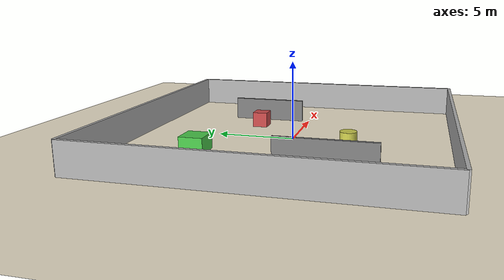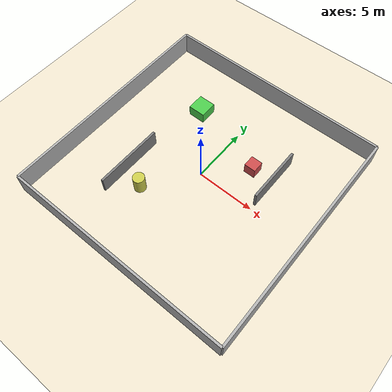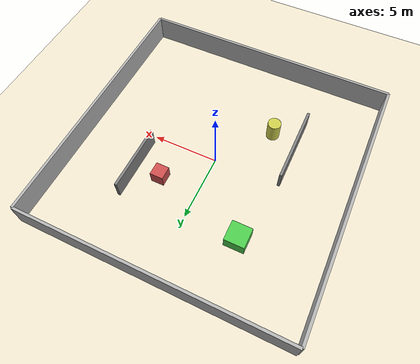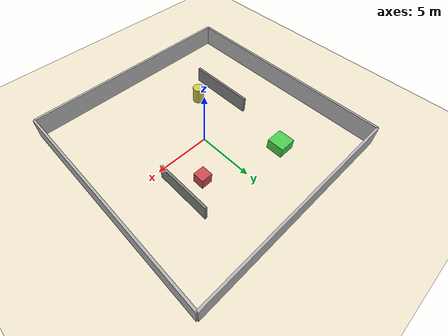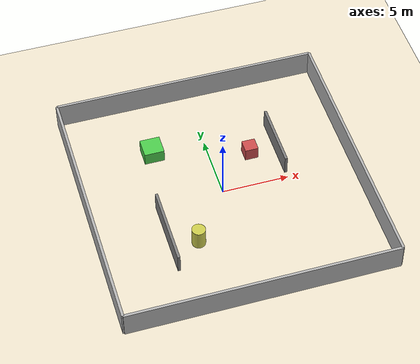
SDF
<?xml version="1.0"?>
<sdf version="1.7">
    <world name="empty">
        <!-- Optimized physics for better RTF and collision response -->
        <physics name="10ms" type="ode">
            <max_step_size>0.003</max_step_size>
            <real_time_factor>1</real_time_factor>
            <real_time_update_rate>333</real_time_update_rate>
            <ode>
                <solver>
                    <type>quick</type>
                    <iters>50</iters>
                    <sor>1.3</sor>
                </solver>
                <constraints>
                    <cfm>0.0</cfm>
                    <erp>0.2</erp>
                    <contact_max_correcting_vel>100.0</contact_max_correcting_vel>
                    <contact_surface_layer>0.001</contact_surface_layer>
                </constraints>
            </ode>
        </physics>

        <plugin name="ignition::gazebo::systems::Physics" filename="ignition-gazebo-physics-system"/>
        <plugin name="ignition::gazebo::systems::UserCommands" filename="ignition-gazebo-user-commands-system"/>
        <plugin name="ignition::gazebo::systems::SceneBroadcaster" filename="ignition-gazebo-scene-broadcaster-system"/>
        <plugin filename="libignition-gazebo-sensors-system.so" name="ignition::gazebo::systems::Sensors">
            <render_engine>ogre2</render_engine>
        </plugin>

        <scene>
            <ambient>1.0 1.0 1.0</ambient>
            <background>0.8 0.8 0.8</background>
        </scene>

        <light type="directional" name="sun">
            <cast_shadows>false</cast_shadows>
            <pose>0 0 10 0 0 0</pose>
            <diffuse>0.8 0.8 0.8 1</diffuse>
            <specular>0.2 0.2 0.2 1</specular>
            <direction>-0.5 0.1 -0.9</direction>
        </light>

        <!-- Ground Plane -->
        <model name="ground_plane">
            <pose>0 0 0 0 0 0</pose>
            <static>true</static>
            <link name="link">
                <collision name="collision">
                    <geometry>
                        <plane>
                            <normal>0 0 1</normal>
                            <size>100 100</size>
                        </plane>
                    </geometry>
                    <surface>
                        <friction>
                            <ode>
                                <mu>1.0</mu>
                                <mu2>1.0</mu2>
                            </ode>
                        </friction>
                        <contact>
                            <ode>
                                <kp>1000000.0</kp>
                                <kd>100.0</kd>
                                <max_vel>1.0</max_vel>
                                <min_depth>0.001</min_depth>
                            </ode>
                        </contact>
                    </surface>
                </collision>
                <visual name="visual">
                    <geometry>
                        <plane>
                            <normal>0 0 1</normal>
                            <size>100 100</size>
                        </plane>
                    </geometry>
                    <material>
                        <ambient>0.94 0.90 0.81 1</ambient>
                        <diffuse>0.94 0.90 0.81 1</diffuse>
                    </material>
                </visual>
            </link>
        </model>

        <!-- Boundary Walls - FIXED: Now at ground level -->
        <!-- North Boundary Wall -->
        <model name="wall_north">
            <pose>0 10 1 0 0 0</pose>
            <static>true</static>
            <link name="link">
                <collision name="collision">
                    <geometry>
                        <box>
                            <size>20 0.2 2</size>
                        </box>
                    </geometry>
                    <surface>
                        <friction>
                            <ode>
                                <mu>0.8</mu>
                                <mu2>0.8</mu2>
                            </ode>
                        </friction>
                        <contact>
                            <ode>
                                <kp>10000000.0</kp>
                                <kd>1000.0</kd>
                                <max_vel>0.0</max_vel>
                                <min_depth>0.0001</min_depth>
                            </ode>
                        </contact>
                        <bounce>
                            <restitution_coefficient>0.0</restitution_coefficient>
                        </bounce>
                    </surface>
                </collision>
                <visual name="visual">
                    <geometry>
                        <box>
                            <size>20 0.2 2</size>
                        </box>
                    </geometry>
                    <material>
                        <ambient>0.7 0.7 0.7 1</ambient>
                        <diffuse>0.7 0.7 0.7 1</diffuse>
                    </material>
                </visual>
            </link>
        </model>

        <!-- South Boundary Wall -->
        <model name="wall_south">
            <pose>0 -10 1 0 0 0</pose>
            <static>true</static>
            <link name="link">
                <collision name="collision">
                    <geometry>
                        <box>
                            <size>20 0.2 2</size>
                        </box>
                    </geometry>
                    <surface>
                        <friction>
                            <ode>
                                <mu>0.8</mu>
                                <mu2>0.8</mu2>
                            </ode>
                        </friction>
                        <contact>
                            <ode>
                                <kp>10000000.0</kp>
                                <kd>1000.0</kd>
                                <max_vel>0.0</max_vel>
                                <min_depth>0.0001</min_depth>
                            </ode>
                        </contact>
                        <bounce>
                            <restitution_coefficient>0.0</restitution_coefficient>
                        </bounce>
                    </surface>
                </collision>
                <visual name="visual">
                    <geometry>
                        <box>
                            <size>20 0.2 2</size>
                        </box>
                    </geometry>
                    <material>
                        <ambient>0.7 0.7 0.7 1</ambient>
                        <diffuse>0.7 0.7 0.7 1</diffuse>
                    </material>
                </visual>
            </link>
        </model>

        <!-- East Boundary Wall -->
        <model name="wall_east">
            <pose>10 0 1 0 0 0</pose>
            <static>true</static>
            <link name="link">
                <collision name="collision">
                    <geometry>
                        <box>
                            <size>0.2 20 2</size>
                        </box>
                    </geometry>
                    <surface>
                        <friction>
                            <ode>
                                <mu>0.8</mu>
                                <mu2>0.8</mu2>
                            </ode>
                        </friction>
                        <contact>
                            <ode>
                                <kp>10000000.0</kp>
                                <kd>1000.0</kd>
                                <max_vel>0.0</max_vel>
                                <min_depth>0.0001</min_depth>
                            </ode>
                        </contact>
                        <bounce>
                            <restitution_coefficient>0.0</restitution_coefficient>
                        </bounce>
                    </surface>
                </collision>
                <visual name="visual">
                    <geometry>
                        <box>
                            <size>0.2 20 2</size>
                        </box>
                    </geometry>
                    <material>
                        <ambient>0.7 0.7 0.7 1</ambient>
                        <diffuse>0.7 0.7 0.7 1</diffuse>
                    </material>
                </visual>
            </link>
        </model>

        <!-- West Boundary Wall -->
        <model name="wall_west">
            <pose>-10 0 1 0 0 0</pose>
            <static>true</static>
            <link name="link">
                <collision name="collision">
                    <geometry>
                        <box>
                            <size>0.2 20 2</size>
                        </box>
                    </geometry>
                    <surface>
                        <friction>
                            <ode>
                                <mu>0.8</mu>
                                <mu2>0.8</mu2>
                            </ode>
                        </friction>
                        <contact>
                            <ode>
                                <kp>10000000.0</kp>
                                <kd>1000.0</kd>
                                <max_vel>0.0</max_vel>
                                <min_depth>0.0001</min_depth>
                            </ode>
                        </contact>
                        <bounce>
                            <restitution_coefficient>0.0</restitution_coefficient>
                        </bounce>
                    </surface>
                </collision>
                <visual name="visual">
                    <geometry>
                        <box>
                            <size>0.2 20 2</size>
                        </box>
                    </geometry>
                    <material>
                        <ambient>0.7 0.7 0.7 1</ambient>
                        <diffuse>0.7 0.7 0.7 1</diffuse>
                    </material>
                </visual>
            </link>
        </model>

        <!-- Box Obstacle 1 -->
        <model name="box_1">
            <pose>3 3 0.5 0 0 0</pose>
            <static>true</static>
            <link name="link">
                <collision name="collision">
                    <geometry>
                        <box>
                            <size>1 1 1</size>
                        </box>
                    </geometry>
                    <surface>
                        <friction>
                            <ode>
                                <mu>0.8</mu>
                                <mu2>0.8</mu2>
                            </ode>
                        </friction>
                        <contact>
                            <ode>
                                <kp>10000000.0</kp>
                                <kd>1000.0</kd>
                                <max_vel>0.0</max_vel>
                                <min_depth>0.0001</min_depth>
                            </ode>
                        </contact>
                    </surface>
                </collision>
                <visual name="visual">
                    <geometry>
                        <box>
                            <size>1 1 1</size>
                        </box>
                    </geometry>
                    <material>
                        <ambient>0.8 0.3 0.3 1</ambient>
                        <diffuse>0.8 0.3 0.3 1</diffuse>
                    </material>
                </visual>
            </link>
        </model>

        <!-- Box Obstacle 2 -->
        <model name="box_2">
            <pose>-4 5 0.5 0 0 0</pose>
            <static>true</static>
            <link name="link">
                <collision name="collision">
                    <geometry>
                        <box>
                            <size>1.5 1.5 1</size>
                        </box>
                    </geometry>
                    <surface>
                        <friction>
                            <ode>
                                <mu>0.8</mu>
                                <mu2>0.8</mu2>
                            </ode>
                        </friction>
                        <contact>
                            <ode>
                                <kp>10000000.0</kp>
                                <kd>1000.0</kd>
                                <max_vel>0.0</max_vel>
                                <min_depth>0.0001</min_depth>
                            </ode>
                        </contact>
                    </surface>
                </collision>
                <visual name="visual">
                    <geometry>
                        <box>
                            <size>1.5 1.5 1</size>
                        </box>
                    </geometry>
                    <material>
                        <ambient>0.3 0.8 0.3 1</ambient>
                        <diffuse>0.3 0.8 0.3 1</diffuse>
                    </material>
                </visual>
            </link>
        </model>

        <!-- Cylinder Obstacle -->
        <model name="cylinder_1">
            <pose>-3 -4 0.75 0 0 0</pose>
            <static>true</static>
            <link name="link">
                <collision name="collision">
                    <geometry>
                        <cylinder>
                            <radius>0.5</radius>
                            <length>1.5</length>
                        </cylinder>
                    </geometry>
                    <surface>
                        <friction>
                            <ode>
                                <mu>0.8</mu>
                                <mu2>0.8</mu2>
                            </ode>
                        </friction>
                        <contact>
                            <ode>
                                <kp>10000000.0</kp>
                                <kd>1000.0</kd>
                                <max_vel>0.0</max_vel>
                                <min_depth>0.0001</min_depth>
                            </ode>
                        </contact>
                    </surface>
                </collision>
                <visual name="visual">
                    <geometry>
                        <cylinder>
                            <radius>0.5</radius>
                            <length>1.5</length>
                        </cylinder>
                    </geometry>
                    <material>
                        <ambient>0.8 0.8 0.3 1</ambient>
                        <diffuse>0.8 0.8 0.3 1</diffuse>
                    </material>
                </visual>
            </link>
        </model>

        <!-- Interior Wall 2 (moved away from spawn point) -->
        <model name="wall_2">
            <pose>-5 -3 0.75 0 0 1.57</pose>
            <static>true</static>
            <link name="link">
                <collision name="collision">
                    <geometry>
                        <box>
                            <size>6 0.2 1.5</size>
                        </box>
                    </geometry>
                    <surface>
                        <friction>
                            <ode>
                                <mu>0.8</mu>
                                <mu2>0.8</mu2>
                            </ode>
                        </friction>
                        <contact>
                            <ode>
                                <kp>10000000.0</kp>
                                <kd>1000.0</kd>
                                <max_vel>0.0</max_vel>
                                <min_depth>0.0001</min_depth>
                            </ode>
                        </contact>
                    </surface>
                </collision>
                <visual name="visual">
                    <geometry>
                        <box>
                            <size>6 0.2 1.5</size>
                        </box>
                    </geometry>
                    <material>
                        <ambient>0.5 0.5 0.5 1</ambient>
                        <diffuse>0.5 0.5 0.5 1</diffuse>
                    </material>
                </visual>
            </link>
        </model>

        <!-- Interior Wall 3 -->
        <model name="wall_3">
            <pose>5 3 0.75 0 0 1.57</pose>
            <static>true</static>
            <link name="link">
                <collision name="collision">
                    <geometry>
                        <box>
                            <size>5 0.2 1.5</size>
                        </box>
                    </geometry>
                    <surface>
                        <friction>
                            <ode>
                                <mu>0.8</mu>
                                <mu2>0.8</mu2>
                            </ode>
                        </friction>
                        <contact>
                            <ode>
                                <kp>10000000.0</kp>
                                <kd>1000.0</kd>
                                <max_vel>0.0</max_vel>
                                <min_depth>0.0001</min_depth>
                            </ode>
                        </contact>
                    </surface>
                </collision>
                <visual name="visual">
                    <geometry>
                        <box>
                            <size>5 0.2 1.5</size>
                        </box>
                    </geometry>
                    <material>
                        <ambient>0.5 0.5 0.5 1</ambient>
                        <diffuse>0.5 0.5 0.5 1</diffuse>
                    </material>
                </visual>
            </link>
        </model>

    </world>
</sdf>
